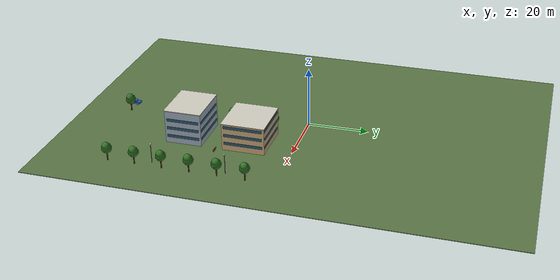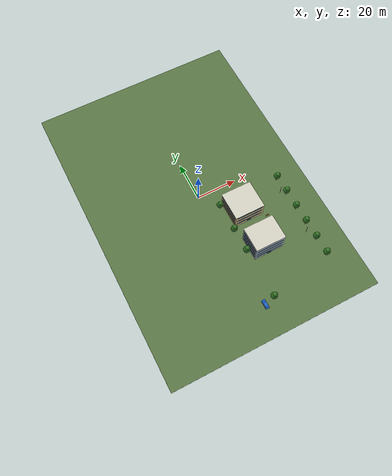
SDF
<sdf version="1.8">
 <world name="ute_city_v1">
  <model name="ground">
   <static>true</static>
   <link name="link">
    <visual name="ground">
     <pose>0 0 -0.1 0 0 0</pose>
     <geometry><box><size>106 154 0.2</size></box></geometry>
     <material>
      <ambient>0.35 0.46 0.27 1</ambient>
      <diffuse>0.35 0.46 0.27 1</diffuse>
      <specular>0.05 0.05 0.05 1</specular>
     </material>
    </visual>
    <collision name="ground_collision">
     <pose>0 0 -0.1 0 0 0</pose>
     <geometry><box><size>106 154 0.2</size></box></geometry>
    </collision>
   </link>
  </model>
  <model name="library">
   <static>true</static>
   <pose>16 -15 0 0 0 0</pose>
   <link name="link">
    <visual name="block">
     <pose>0 0 4.5 0 0 0</pose>
     <geometry><box><size>15 14 9</size></box></geometry>
     <material>
      <ambient>0.73 0.62 0.45 1</ambient>
      <diffuse>0.73 0.62 0.45 1</diffuse>
      <specular>0.05 0.05 0.05 1</specular>
     </material>
    </visual>
    <collision name="block_collision">
     <pose>0 0 4.5 0 0 0</pose>
     <geometry><box><size>15 14 9</size></box></geometry>
    </collision>
    <visual name="roof">
     <pose>0 0 9.12 0 0 0</pose>
     <geometry><box><size>15.3 14.3 0.24</size></box></geometry>
     <material>
      <ambient>0.83 0.82 0.76 1</ambient>
      <diffuse>0.83 0.82 0.76 1</diffuse>
      <specular>0.05 0.05 0.05 1</specular>
     </material>
    </visual>
    <collision name="roof_collision">
     <pose>0 0 9.12 0 0 0</pose>
     <geometry><box><size>15.3 14.3 0.24</size></box></geometry>
    </collision>
    <visual name="windows_y_1_-1">
     <pose>0 -7.018 2.4 0 0 0</pose>
     <geometry><box><size>13.7 0.03 1</size></box></geometry>
     <material>
      <ambient>0.16 0.30 0.36 1</ambient>
      <diffuse>0.16 0.30 0.36 1</diffuse>
      <specular>0.05 0.05 0.05 1</specular>
     </material>
    </visual>
    <visual name="windows_x_1_-1">
     <pose>-7.518 0 2.4 0 0 0</pose>
     <geometry><box><size>0.03 12.7 1</size></box></geometry>
     <material>
      <ambient>0.16 0.30 0.36 1</ambient>
      <diffuse>0.16 0.30 0.36 1</diffuse>
      <specular>0.05 0.05 0.05 1</specular>
     </material>
    </visual>
    <visual name="windows_y_1_1">
     <pose>0 7.018 2.4 0 0 0</pose>
     <geometry><box><size>13.7 0.03 1</size></box></geometry>
     <material>
      <ambient>0.16 0.30 0.36 1</ambient>
      <diffuse>0.16 0.30 0.36 1</diffuse>
      <specular>0.05 0.05 0.05 1</specular>
     </material>
    </visual>
    <visual name="windows_x_1_1">
     <pose>7.518 0 2.4 0 0 0</pose>
     <geometry><box><size>0.03 12.7 1</size></box></geometry>
     <material>
      <ambient>0.16 0.30 0.36 1</ambient>
      <diffuse>0.16 0.30 0.36 1</diffuse>
      <specular>0.05 0.05 0.05 1</specular>
     </material>
    </visual>
    <visual name="windows_y_2_-1">
     <pose>0 -7.018 5.2 0 0 0</pose>
     <geometry><box><size>13.7 0.03 1</size></box></geometry>
     <material>
      <ambient>0.16 0.30 0.36 1</ambient>
      <diffuse>0.16 0.30 0.36 1</diffuse>
      <specular>0.05 0.05 0.05 1</specular>
     </material>
    </visual>
    <visual name="windows_x_2_-1">
     <pose>-7.518 0 5.2 0 0 0</pose>
     <geometry><box><size>0.03 12.7 1</size></box></geometry>
     <material>
      <ambient>0.16 0.30 0.36 1</ambient>
      <diffuse>0.16 0.30 0.36 1</diffuse>
      <specular>0.05 0.05 0.05 1</specular>
     </material>
    </visual>
    <visual name="windows_y_2_1">
     <pose>0 7.018 5.2 0 0 0</pose>
     <geometry><box><size>13.7 0.03 1</size></box></geometry>
     <material>
      <ambient>0.16 0.30 0.36 1</ambient>
      <diffuse>0.16 0.30 0.36 1</diffuse>
      <specular>0.05 0.05 0.05 1</specular>
     </material>
    </visual>
    <visual name="windows_x_2_1">
     <pose>7.518 0 5.2 0 0 0</pose>
     <geometry><box><size>0.03 12.7 1</size></box></geometry>
     <material>
      <ambient>0.16 0.30 0.36 1</ambient>
      <diffuse>0.16 0.30 0.36 1</diffuse>
      <specular>0.05 0.05 0.05 1</specular>
     </material>
    </visual>
    <visual name="windows_y_3_-1">
     <pose>0 -7.018 8 0 0 0</pose>
     <geometry><box><size>13.7 0.03 1</size></box></geometry>
     <material>
      <ambient>0.16 0.30 0.36 1</ambient>
      <diffuse>0.16 0.30 0.36 1</diffuse>
      <specular>0.05 0.05 0.05 1</specular>
     </material>
    </visual>
    <visual name="windows_x_3_-1">
     <pose>-7.518 0 8 0 0 0</pose>
     <geometry><box><size>0.03 12.7 1</size></box></geometry>
     <material>
      <ambient>0.16 0.30 0.36 1</ambient>
      <diffuse>0.16 0.30 0.36 1</diffuse>
      <specular>0.05 0.05 0.05 1</specular>
     </material>
    </visual>
    <visual name="windows_y_3_1">
     <pose>0 7.018 8 0 0 0</pose>
     <geometry><box><size>13.7 0.03 1</size></box></geometry>
     <material>
      <ambient>0.16 0.30 0.36 1</ambient>
      <diffuse>0.16 0.30 0.36 1</diffuse>
      <specular>0.05 0.05 0.05 1</specular>
     </material>
    </visual>
    <visual name="windows_x_3_1">
     <pose>7.518 0 8 0 0 0</pose>
     <geometry><box><size>0.03 12.7 1</size></box></geometry>
     <material>
      <ambient>0.16 0.30 0.36 1</ambient>
      <diffuse>0.16 0.30 0.36 1</diffuse>
      <specular>0.05 0.05 0.05 1</specular>
     </material>
    </visual>
    <visual name="entry">
     <pose>0 -7.018 1.3 0 0 0</pose>
     <geometry><box><size>2.1 0.04 2.6</size></box></geometry>
     <material>
      <ambient>0.12 0.22 0.24 1</ambient>
      <diffuse>0.12 0.22 0.24 1</diffuse>
      <specular>0.05 0.05 0.05 1</specular>
     </material>
    </visual>
   </link>
  </model>
  <model name="technology">
   <static>true</static>
   <pose>16 -35 0 0 0 0</pose>
   <link name="link">
    <visual name="block">
     <pose>0 0 5.5 0 0 0</pose>
     <geometry><box><size>15 12 11</size></box></geometry>
     <material>
      <ambient>0.58 0.63 0.69 1</ambient>
      <diffuse>0.58 0.63 0.69 1</diffuse>
      <specular>0.05 0.05 0.05 1</specular>
     </material>
    </visual>
    <collision name="block_collision">
     <pose>0 0 5.5 0 0 0</pose>
     <geometry><box><size>15 12 11</size></box></geometry>
    </collision>
    <visual name="roof">
     <pose>0 0 11.12 0 0 0</pose>
     <geometry><box><size>15.3 12.3 0.24</size></box></geometry>
     <material>
      <ambient>0.83 0.82 0.76 1</ambient>
      <diffuse>0.83 0.82 0.76 1</diffuse>
      <specular>0.05 0.05 0.05 1</specular>
     </material>
    </visual>
    <collision name="roof_collision">
     <pose>0 0 11.12 0 0 0</pose>
     <geometry><box><size>15.3 12.3 0.24</size></box></geometry>
    </collision>
    <visual name="windows_y_1_-1">
     <pose>0 -6.018 2.4 0 0 0</pose>
     <geometry><box><size>13.7 0.03 1</size></box></geometry>
     <material>
      <ambient>0.16 0.30 0.36 1</ambient>
      <diffuse>0.16 0.30 0.36 1</diffuse>
      <specular>0.05 0.05 0.05 1</specular>
     </material>
    </visual>
    <visual name="windows_x_1_-1">
     <pose>-7.518 0 2.4 0 0 0</pose>
     <geometry><box><size>0.03 10.7 1</size></box></geometry>
     <material>
      <ambient>0.16 0.30 0.36 1</ambient>
      <diffuse>0.16 0.30 0.36 1</diffuse>
      <specular>0.05 0.05 0.05 1</specular>
     </material>
    </visual>
    <visual name="windows_y_1_1">
     <pose>0 6.018 2.4 0 0 0</pose>
     <geometry><box><size>13.7 0.03 1</size></box></geometry>
     <material>
      <ambient>0.16 0.30 0.36 1</ambient>
      <diffuse>0.16 0.30 0.36 1</diffuse>
      <specular>0.05 0.05 0.05 1</specular>
     </material>
    </visual>
    <visual name="windows_x_1_1">
     <pose>7.518 0 2.4 0 0 0</pose>
     <geometry><box><size>0.03 10.7 1</size></box></geometry>
     <material>
      <ambient>0.16 0.30 0.36 1</ambient>
      <diffuse>0.16 0.30 0.36 1</diffuse>
      <specular>0.05 0.05 0.05 1</specular>
     </material>
    </visual>
    <visual name="windows_y_2_-1">
     <pose>0 -6.018 5.2 0 0 0</pose>
     <geometry><box><size>13.7 0.03 1</size></box></geometry>
     <material>
      <ambient>0.16 0.30 0.36 1</ambient>
      <diffuse>0.16 0.30 0.36 1</diffuse>
      <specular>0.05 0.05 0.05 1</specular>
     </material>
    </visual>
    <visual name="windows_x_2_-1">
     <pose>-7.518 0 5.2 0 0 0</pose>
     <geometry><box><size>0.03 10.7 1</size></box></geometry>
     <material>
      <ambient>0.16 0.30 0.36 1</ambient>
      <diffuse>0.16 0.30 0.36 1</diffuse>
      <specular>0.05 0.05 0.05 1</specular>
     </material>
    </visual>
    <visual name="windows_y_2_1">
     <pose>0 6.018 5.2 0 0 0</pose>
     <geometry><box><size>13.7 0.03 1</size></box></geometry>
     <material>
      <ambient>0.16 0.30 0.36 1</ambient>
      <diffuse>0.16 0.30 0.36 1</diffuse>
      <specular>0.05 0.05 0.05 1</specular>
     </material>
    </visual>
    <visual name="windows_x_2_1">
     <pose>7.518 0 5.2 0 0 0</pose>
     <geometry><box><size>0.03 10.7 1</size></box></geometry>
     <material>
      <ambient>0.16 0.30 0.36 1</ambient>
      <diffuse>0.16 0.30 0.36 1</diffuse>
      <specular>0.05 0.05 0.05 1</specular>
     </material>
    </visual>
    <visual name="windows_y_3_-1">
     <pose>0 -6.018 8 0 0 0</pose>
     <geometry><box><size>13.7 0.03 1</size></box></geometry>
     <material>
      <ambient>0.16 0.30 0.36 1</ambient>
      <diffuse>0.16 0.30 0.36 1</diffuse>
      <specular>0.05 0.05 0.05 1</specular>
     </material>
    </visual>
    <visual name="windows_x_3_-1">
     <pose>-7.518 0 8 0 0 0</pose>
     <geometry><box><size>0.03 10.7 1</size></box></geometry>
     <material>
      <ambient>0.16 0.30 0.36 1</ambient>
      <diffuse>0.16 0.30 0.36 1</diffuse>
      <specular>0.05 0.05 0.05 1</specular>
     </material>
    </visual>
    <visual name="windows_y_3_1">
     <pose>0 6.018 8 0 0 0</pose>
     <geometry><box><size>13.7 0.03 1</size></box></geometry>
     <material>
      <ambient>0.16 0.30 0.36 1</ambient>
      <diffuse>0.16 0.30 0.36 1</diffuse>
      <specular>0.05 0.05 0.05 1</specular>
     </material>
    </visual>
    <visual name="windows_x_3_1">
     <pose>7.518 0 8 0 0 0</pose>
     <geometry><box><size>0.03 10.7 1</size></box></geometry>
     <material>
      <ambient>0.16 0.30 0.36 1</ambient>
      <diffuse>0.16 0.30 0.36 1</diffuse>
      <specular>0.05 0.05 0.05 1</specular>
     </material>
    </visual>
    <visual name="entry">
     <pose>0 -6.018 1.3 0 0 0</pose>
     <geometry><box><size>2.1 0.04 2.6</size></box></geometry>
     <material>
      <ambient>0.12 0.22 0.24 1</ambient>
      <diffuse>0.12 0.22 0.24 1</diffuse>
      <specular>0.05 0.05 0.05 1</specular>
     </material>
    </visual>
   </link>
  </model>
  <model name="tree_013">
   <static>true</static>
   <pose>39 -54 0 0 0 0</pose>
   <link name="link">
    <visual name="trunk">
     <pose>0 0 1.6 0 0 0</pose>
     <geometry><cylinder><radius>0.2</radius><length>3.2</length></cylinder></geometry>
     <material>
      <ambient>0.30 0.19 0.10 1</ambient>
      <diffuse>0.30 0.19 0.10 1</diffuse>
      <specular>0.05 0.05 0.05 1</specular>
     </material>
    </visual>
    <collision name="trunk_collision">
     <pose>0 0 1.6 0 0 0</pose>
     <geometry><cylinder><radius>0.2</radius><length>3.2</length></cylinder></geometry>
    </collision>
    <visual name="canopy">
     <pose>0 0 4.2 0 0 0</pose>
     <geometry><sphere><radius>1.65</radius></sphere></geometry>
     <material>
      <ambient>0.15 0.39 0.12 1</ambient>
      <diffuse>0.15 0.39 0.12 1</diffuse>
      <specular>0.05 0.05 0.05 1</specular>
     </material>
    </visual>
    <visual name="crown">
     <pose>0.4 0 5.2 0 0 0</pose>
     <geometry><sphere><radius>1.2</radius></sphere></geometry>
     <material>
      <ambient>0.21 0.46 0.15 1</ambient>
      <diffuse>0.21 0.46 0.15 1</diffuse>
      <specular>0.05 0.05 0.05 1</specular>
     </material>
    </visual>
   </link>
  </model>
  <model name="tree_014">
   <static>true</static>
   <pose>39 -45 0 0 0 0</pose>
   <link name="link">
    <visual name="trunk">
     <pose>0 0 1.6 0 0 0</pose>
     <geometry><cylinder><radius>0.2</radius><length>3.2</length></cylinder></geometry>
     <material>
      <ambient>0.30 0.19 0.10 1</ambient>
      <diffuse>0.30 0.19 0.10 1</diffuse>
      <specular>0.05 0.05 0.05 1</specular>
     </material>
    </visual>
    <collision name="trunk_collision">
     <pose>0 0 1.6 0 0 0</pose>
     <geometry><cylinder><radius>0.2</radius><length>3.2</length></cylinder></geometry>
    </collision>
    <visual name="canopy">
     <pose>0 0 4.2 0 0 0</pose>
     <geometry><sphere><radius>1.65</radius></sphere></geometry>
     <material>
      <ambient>0.15 0.39 0.12 1</ambient>
      <diffuse>0.15 0.39 0.12 1</diffuse>
      <specular>0.05 0.05 0.05 1</specular>
     </material>
    </visual>
    <visual name="crown">
     <pose>0.4 0 5.2 0 0 0</pose>
     <geometry><sphere><radius>1.2</radius></sphere></geometry>
     <material>
      <ambient>0.21 0.46 0.15 1</ambient>
      <diffuse>0.21 0.46 0.15 1</diffuse>
      <specular>0.05 0.05 0.05 1</specular>
     </material>
    </visual>
   </link>
  </model>
  <model name="tree_015">
   <static>true</static>
   <pose>39 -36 0 0 0 0</pose>
   <link name="link">
    <visual name="trunk">
     <pose>0 0 1.6 0 0 0</pose>
     <geometry><cylinder><radius>0.2</radius><length>3.2</length></cylinder></geometry>
     <material>
      <ambient>0.30 0.19 0.10 1</ambient>
      <diffuse>0.30 0.19 0.10 1</diffuse>
      <specular>0.05 0.05 0.05 1</specular>
     </material>
    </visual>
    <collision name="trunk_collision">
     <pose>0 0 1.6 0 0 0</pose>
     <geometry><cylinder><radius>0.2</radius><length>3.2</length></cylinder></geometry>
    </collision>
    <visual name="canopy">
     <pose>0 0 4.2 0 0 0</pose>
     <geometry><sphere><radius>1.65</radius></sphere></geometry>
     <material>
      <ambient>0.15 0.39 0.12 1</ambient>
      <diffuse>0.15 0.39 0.12 1</diffuse>
      <specular>0.05 0.05 0.05 1</specular>
     </material>
    </visual>
    <visual name="crown">
     <pose>0.4 0 5.2 0 0 0</pose>
     <geometry><sphere><radius>1.2</radius></sphere></geometry>
     <material>
      <ambient>0.21 0.46 0.15 1</ambient>
      <diffuse>0.21 0.46 0.15 1</diffuse>
      <specular>0.05 0.05 0.05 1</specular>
     </material>
    </visual>
   </link>
  </model>
  <model name="tree_016">
   <static>true</static>
   <pose>39 -27 0 0 0 0</pose>
   <link name="link">
    <visual name="trunk">
     <pose>0 0 1.6 0 0 0</pose>
     <geometry><cylinder><radius>0.2</radius><length>3.2</length></cylinder></geometry>
     <material>
      <ambient>0.30 0.19 0.10 1</ambient>
      <diffuse>0.30 0.19 0.10 1</diffuse>
      <specular>0.05 0.05 0.05 1</specular>
     </material>
    </visual>
    <collision name="trunk_collision">
     <pose>0 0 1.6 0 0 0</pose>
     <geometry><cylinder><radius>0.2</radius><length>3.2</length></cylinder></geometry>
    </collision>
    <visual name="canopy">
     <pose>0 0 4.2 0 0 0</pose>
     <geometry><sphere><radius>1.65</radius></sphere></geometry>
     <material>
      <ambient>0.15 0.39 0.12 1</ambient>
      <diffuse>0.15 0.39 0.12 1</diffuse>
      <specular>0.05 0.05 0.05 1</specular>
     </material>
    </visual>
    <visual name="crown">
     <pose>0.4 0 5.2 0 0 0</pose>
     <geometry><sphere><radius>1.2</radius></sphere></geometry>
     <material>
      <ambient>0.21 0.46 0.15 1</ambient>
      <diffuse>0.21 0.46 0.15 1</diffuse>
      <specular>0.05 0.05 0.05 1</specular>
     </material>
    </visual>
   </link>
  </model>
  <model name="tree_017">
   <static>true</static>
   <pose>39 -18 0 0 0 0</pose>
   <link name="link">
    <visual name="trunk">
     <pose>0 0 1.6 0 0 0</pose>
     <geometry><cylinder><radius>0.2</radius><length>3.2</length></cylinder></geometry>
     <material>
      <ambient>0.30 0.19 0.10 1</ambient>
      <diffuse>0.30 0.19 0.10 1</diffuse>
      <specular>0.05 0.05 0.05 1</specular>
     </material>
    </visual>
    <collision name="trunk_collision">
     <pose>0 0 1.6 0 0 0</pose>
     <geometry><cylinder><radius>0.2</radius><length>3.2</length></cylinder></geometry>
    </collision>
    <visual name="canopy">
     <pose>0 0 4.2 0 0 0</pose>
     <geometry><sphere><radius>1.65</radius></sphere></geometry>
     <material>
      <ambient>0.15 0.39 0.12 1</ambient>
      <diffuse>0.15 0.39 0.12 1</diffuse>
      <specular>0.05 0.05 0.05 1</specular>
     </material>
    </visual>
    <visual name="crown">
     <pose>0.4 0 5.2 0 0 0</pose>
     <geometry><sphere><radius>1.2</radius></sphere></geometry>
     <material>
      <ambient>0.21 0.46 0.15 1</ambient>
      <diffuse>0.21 0.46 0.15 1</diffuse>
      <specular>0.05 0.05 0.05 1</specular>
     </material>
    </visual>
   </link>
  </model>
  <model name="tree_018">
   <static>true</static>
   <pose>39 -9 0 0 0 0</pose>
   <link name="link">
    <visual name="trunk">
     <pose>0 0 1.6 0 0 0</pose>
     <geometry><cylinder><radius>0.2</radius><length>3.2</length></cylinder></geometry>
     <material>
      <ambient>0.30 0.19 0.10 1</ambient>
      <diffuse>0.30 0.19 0.10 1</diffuse>
      <specular>0.05 0.05 0.05 1</specular>
     </material>
    </visual>
    <collision name="trunk_collision">
     <pose>0 0 1.6 0 0 0</pose>
     <geometry><cylinder><radius>0.2</radius><length>3.2</length></cylinder></geometry>
    </collision>
    <visual name="canopy">
     <pose>0 0 4.2 0 0 0</pose>
     <geometry><sphere><radius>1.65</radius></sphere></geometry>
     <material>
      <ambient>0.15 0.39 0.12 1</ambient>
      <diffuse>0.15 0.39 0.12 1</diffuse>
      <specular>0.05 0.05 0.05 1</specular>
     </material>
    </visual>
    <visual name="crown">
     <pose>0.4 0 5.2 0 0 0</pose>
     <geometry><sphere><radius>1.2</radius></sphere></geometry>
     <material>
      <ambient>0.21 0.46 0.15 1</ambient>
      <diffuse>0.21 0.46 0.15 1</diffuse>
      <specular>0.05 0.05 0.05 1</specular>
     </material>
    </visual>
   </link>
  </model>
  <model name="tree_040">
   <static>true</static>
   <pose>6.5 -61 0 0 0 0</pose>
   <link name="link">
    <visual name="trunk">
     <pose>0 0 1.6 0 0 0</pose>
     <geometry><cylinder><radius>0.2</radius><length>3.2</length></cylinder></geometry>
     <material>
      <ambient>0.30 0.19 0.10 1</ambient>
      <diffuse>0.30 0.19 0.10 1</diffuse>
      <specular>0.05 0.05 0.05 1</specular>
     </material>
    </visual>
    <collision name="trunk_collision">
     <pose>0 0 1.6 0 0 0</pose>
     <geometry><cylinder><radius>0.2</radius><length>3.2</length></cylinder></geometry>
    </collision>
    <visual name="canopy">
     <pose>0 0 4.2 0 0 0</pose>
     <geometry><sphere><radius>1.65</radius></sphere></geometry>
     <material>
      <ambient>0.15 0.39 0.12 1</ambient>
      <diffuse>0.15 0.39 0.12 1</diffuse>
      <specular>0.05 0.05 0.05 1</specular>
     </material>
    </visual>
    <visual name="crown">
     <pose>0.4 0 5.2 0 0 0</pose>
     <geometry><sphere><radius>1.2</radius></sphere></geometry>
     <material>
      <ambient>0.21 0.46 0.15 1</ambient>
      <diffuse>0.21 0.46 0.15 1</diffuse>
      <specular>0.05 0.05 0.05 1</specular>
     </material>
    </visual>
   </link>
  </model>
  <model name="tree_041">
   <static>true</static>
   <pose>6.5 -36 0 0 0 0</pose>
   <link name="link">
    <visual name="trunk">
     <pose>0 0 1.6 0 0 0</pose>
     <geometry><cylinder><radius>0.2</radius><length>3.2</length></cylinder></geometry>
     <material>
      <ambient>0.30 0.19 0.10 1</ambient>
      <diffuse>0.30 0.19 0.10 1</diffuse>
      <specular>0.05 0.05 0.05 1</specular>
     </material>
    </visual>
    <collision name="trunk_collision">
     <pose>0 0 1.6 0 0 0</pose>
     <geometry><cylinder><radius>0.2</radius><length>3.2</length></cylinder></geometry>
    </collision>
    <visual name="canopy">
     <pose>0 0 4.2 0 0 0</pose>
     <geometry><sphere><radius>1.65</radius></sphere></geometry>
     <material>
      <ambient>0.15 0.39 0.12 1</ambient>
      <diffuse>0.15 0.39 0.12 1</diffuse>
      <specular>0.05 0.05 0.05 1</specular>
     </material>
    </visual>
    <visual name="crown">
     <pose>0.4 0 5.2 0 0 0</pose>
     <geometry><sphere><radius>1.2</radius></sphere></geometry>
     <material>
      <ambient>0.21 0.46 0.15 1</ambient>
      <diffuse>0.21 0.46 0.15 1</diffuse>
      <specular>0.05 0.05 0.05 1</specular>
     </material>
    </visual>
   </link>
  </model>
  <model name="tree_042">
   <static>true</static>
   <pose>6.5 -24 0 0 0 0</pose>
   <link name="link">
    <visual name="trunk">
     <pose>0 0 1.6 0 0 0</pose>
     <geometry><cylinder><radius>0.2</radius><length>3.2</length></cylinder></geometry>
     <material>
      <ambient>0.30 0.19 0.10 1</ambient>
      <diffuse>0.30 0.19 0.10 1</diffuse>
      <specular>0.05 0.05 0.05 1</specular>
     </material>
    </visual>
    <collision name="trunk_collision">
     <pose>0 0 1.6 0 0 0</pose>
     <geometry><cylinder><radius>0.2</radius><length>3.2</length></cylinder></geometry>
    </collision>
    <visual name="canopy">
     <pose>0 0 4.2 0 0 0</pose>
     <geometry><sphere><radius>1.65</radius></sphere></geometry>
     <material>
      <ambient>0.15 0.39 0.12 1</ambient>
      <diffuse>0.15 0.39 0.12 1</diffuse>
      <specular>0.05 0.05 0.05 1</specular>
     </material>
    </visual>
    <visual name="crown">
     <pose>0.4 0 5.2 0 0 0</pose>
     <geometry><sphere><radius>1.2</radius></sphere></geometry>
     <material>
      <ambient>0.21 0.46 0.15 1</ambient>
      <diffuse>0.21 0.46 0.15 1</diffuse>
      <specular>0.05 0.05 0.05 1</specular>
     </material>
    </visual>
   </link>
  </model>
  <model name="tree_043">
   <static>true</static>
   <pose>6.5 -10 0 0 0 0</pose>
   <link name="link">
    <visual name="trunk">
     <pose>0 0 1.6 0 0 0</pose>
     <geometry><cylinder><radius>0.2</radius><length>3.2</length></cylinder></geometry>
     <material>
      <ambient>0.30 0.19 0.10 1</ambient>
      <diffuse>0.30 0.19 0.10 1</diffuse>
      <specular>0.05 0.05 0.05 1</specular>
     </material>
    </visual>
    <collision name="trunk_collision">
     <pose>0 0 1.6 0 0 0</pose>
     <geometry><cylinder><radius>0.2</radius><length>3.2</length></cylinder></geometry>
    </collision>
    <visual name="canopy">
     <pose>0 0 4.2 0 0 0</pose>
     <geometry><sphere><radius>1.65</radius></sphere></geometry>
     <material>
      <ambient>0.15 0.39 0.12 1</ambient>
      <diffuse>0.15 0.39 0.12 1</diffuse>
      <specular>0.05 0.05 0.05 1</specular>
     </material>
    </visual>
    <visual name="crown">
     <pose>0.4 0 5.2 0 0 0</pose>
     <geometry><sphere><radius>1.2</radius></sphere></geometry>
     <material>
      <ambient>0.21 0.46 0.15 1</ambient>
      <diffuse>0.21 0.46 0.15 1</diffuse>
      <specular>0.05 0.05 0.05 1</specular>
     </material>
    </visual>
   </link>
  </model>
  <model name="lamp_4">
   <static>true</static>
   <pose>37 -40 0 0 0 0</pose>
   <link name="link">
    <visual name="pole">
     <pose>0 0 3.3 0 0 0</pose>
     <geometry><cylinder><radius>0.08</radius><length>6.6</length></cylinder></geometry>
     <material>
      <ambient>0.25 0.27 0.29 1</ambient>
      <diffuse>0.25 0.27 0.29 1</diffuse>
      <specular>0.05 0.05 0.05 1</specular>
     </material>
    </visual>
    <collision name="pole_collision">
     <pose>0 0 3.3 0 0 0</pose>
     <geometry><cylinder><radius>0.08</radius><length>6.6</length></cylinder></geometry>
    </collision>
    <visual name="fixture">
     <pose>0 0 6.6 0 0 0</pose>
     <geometry><box><size>0.7 0.4 0.15</size></box></geometry>
     <material>
      <ambient>0.8 0.8 0.7 1</ambient>
      <diffuse>0.8 0.8 0.7 1</diffuse>
      <specular>0.05 0.05 0.05 1</specular>
     </material>
    </visual>
    <collision name="fixture_collision">
     <pose>0 0 6.6 0 0 0</pose>
     <geometry><box><size>0.7 0.4 0.15</size></box></geometry>
    </collision>
   </link>
  </model>
  <model name="lamp_5">
   <static>true</static>
   <pose>37 -16 0 0 0 0</pose>
   <link name="link">
    <visual name="pole">
     <pose>0 0 3.3 0 0 0</pose>
     <geometry><cylinder><radius>0.08</radius><length>6.6</length></cylinder></geometry>
     <material>
      <ambient>0.25 0.27 0.29 1</ambient>
      <diffuse>0.25 0.27 0.29 1</diffuse>
      <specular>0.05 0.05 0.05 1</specular>
     </material>
    </visual>
    <collision name="pole_collision">
     <pose>0 0 3.3 0 0 0</pose>
     <geometry><cylinder><radius>0.08</radius><length>6.6</length></cylinder></geometry>
    </collision>
    <visual name="fixture">
     <pose>0 0 6.6 0 0 0</pose>
     <geometry><box><size>0.7 0.4 0.15</size></box></geometry>
     <material>
      <ambient>0.8 0.8 0.7 1</ambient>
      <diffuse>0.8 0.8 0.7 1</diffuse>
      <specular>0.05 0.05 0.05 1</specular>
     </material>
    </visual>
    <collision name="fixture_collision">
     <pose>0 0 6.6 0 0 0</pose>
     <geometry><box><size>0.7 0.4 0.15</size></box></geometry>
    </collision>
   </link>
  </model>
  <model name="bench_1">
   <static>true</static>
   <pose>25 -24 0 0 0 0</pose>
   <link name="link">
    <visual name="seat">
     <pose>0 0 0.5 0 0 0</pose>
     <geometry><box><size>1.8 0.5 0.13</size></box></geometry>
     <material>
      <ambient>0.48 0.29 0.12 1</ambient>
      <diffuse>0.48 0.29 0.12 1</diffuse>
      <specular>0.05 0.05 0.05 1</specular>
     </material>
    </visual>
    <collision name="seat_collision">
     <pose>0 0 0.5 0 0 0</pose>
     <geometry><box><size>1.8 0.5 0.13</size></box></geometry>
    </collision>
    <visual name="back">
     <pose>0 0.22 0.85 0 0 0</pose>
     <geometry><box><size>1.8 0.12 0.6</size></box></geometry>
     <material>
      <ambient>0.48 0.29 0.12 1</ambient>
      <diffuse>0.48 0.29 0.12 1</diffuse>
      <specular>0.05 0.05 0.05 1</specular>
     </material>
    </visual>
    <collision name="back_collision">
     <pose>0 0.22 0.85 0 0 0</pose>
     <geometry><box><size>1.8 0.12 0.6</size></box></geometry>
    </collision>
    <visual name="leg_-1">
     <pose>-0.65 0 0.25 0 0 0</pose>
     <geometry><box><size>0.1 0.4 0.5</size></box></geometry>
     <material>
      <ambient>0.2 0.2 0.2 1</ambient>
      <diffuse>0.2 0.2 0.2 1</diffuse>
      <specular>0.05 0.05 0.05 1</specular>
     </material>
    </visual>
    <collision name="leg_-1_collision">
     <pose>-0.65 0 0.25 0 0 0</pose>
     <geometry><box><size>0.1 0.4 0.5</size></box></geometry>
    </collision>
    <visual name="leg_1">
     <pose>0.65 0 0.25 0 0 0</pose>
     <geometry><box><size>0.1 0.4 0.5</size></box></geometry>
     <material>
      <ambient>0.2 0.2 0.2 1</ambient>
      <diffuse>0.2 0.2 0.2 1</diffuse>
      <specular>0.05 0.05 0.05 1</specular>
     </material>
    </visual>
    <collision name="leg_1_collision">
     <pose>0.65 0 0.25 0 0 0</pose>
     <geometry><box><size>0.1 0.4 0.5</size></box></geometry>
    </collision>
   </link>
  </model>
  <model name="ute_car">
   <pose>1.75 -62 0.04 0 0 1.5707963</pose>
   <link name="chassis">
    <pose>0 0 0.72 0 0 0</pose>
    <inertial>
     <mass>1100</mass>
     <inertia><ixx>390</ixx><iyy>1850</iyy><izz>2000</izz><ixy>0</ixy><ixz>0</ixz><iyz>0</iyz></inertia>
    </inertial>
    <visual name="body">
     <geometry><box><size>4.4 1.8 0.6</size></box></geometry>
     <material>
      <ambient>0.08 0.32 0.70 1</ambient>
      <diffuse>0.08 0.32 0.70 1</diffuse>
      <specular>0.05 0.05 0.05 1</specular>
     </material>
    </visual>
    <collision name="body_collision"><geometry><box><size>4.4 1.8 0.6</size></box></geometry></collision>
    <visual name="cabin">
     <pose>-0.25 0 0.55 0 0 0</pose>
     <geometry><box><size>2.25 1.58 0.6</size></box></geometry>
     <material>
      <ambient>0.12 0.38 0.75 1</ambient>
      <diffuse>0.12 0.38 0.75 1</diffuse>
      <specular>0.05 0.05 0.05 1</specular>
     </material>
    </visual>
    <collision name="cabin_collision">
     <pose>-0.25 0 0.55 0 0 0</pose>
     <geometry><box><size>2.25 1.58 0.6</size></box></geometry>
    </collision>
    <visual name="windshield">
     <pose>0.885 0 0.55 0 0 0</pose>
     <geometry><box><size>0.025 1.42 0.45</size></box></geometry>
     <material>
      <ambient>0.09 0.18 0.23 1</ambient>
      <diffuse>0.09 0.18 0.23 1</diffuse>
      <specular>0.05 0.05 0.05 1</specular>
     </material>
    </visual>
    <visual name="window_-1">
     <pose>-0.25 -0.8 0.55 0 0 0</pose>
     <geometry><box><size>1.95 0.025 0.43</size></box></geometry>
     <material>
      <ambient>0.09 0.18 0.23 1</ambient>
      <diffuse>0.09 0.18 0.23 1</diffuse>
      <specular>0.05 0.05 0.05 1</specular>
     </material>
    </visual>
    <visual name="headlamp_-1">
     <pose>2.205 -0.58 0.08 0 0 0</pose>
     <geometry><box><size>0.025 0.36 0.16</size></box></geometry>
     <material>
      <ambient>0.95 0.95 0.92 1</ambient>
      <diffuse>0.95 0.95 0.92 1</diffuse>
      <specular>0.05 0.05 0.05 1</specular>
     </material>
    </visual>
    <visual name="taillamp_-1">
     <pose>-2.205 -0.58 0.08 0 0 0</pose>
     <geometry><box><size>0.025 0.36 0.16</size></box></geometry>
     <material>
      <ambient>0.85 0.035 0.025 1</ambient>
      <diffuse>0.85 0.035 0.025 1</diffuse>
      <specular>0.05 0.05 0.05 1</specular>
     </material>
    </visual>
    <visual name="window_1">
     <pose>-0.25 0.8 0.55 0 0 0</pose>
     <geometry><box><size>1.95 0.025 0.43</size></box></geometry>
     <material>
      <ambient>0.09 0.18 0.23 1</ambient>
      <diffuse>0.09 0.18 0.23 1</diffuse>
      <specular>0.05 0.05 0.05 1</specular>
     </material>
    </visual>
    <visual name="headlamp_1">
     <pose>2.205 0.58 0.08 0 0 0</pose>
     <geometry><box><size>0.025 0.36 0.16</size></box></geometry>
     <material>
      <ambient>0.95 0.95 0.92 1</ambient>
      <diffuse>0.95 0.95 0.92 1</diffuse>
      <specular>0.05 0.05 0.05 1</specular>
     </material>
    </visual>
    <visual name="taillamp_1">
     <pose>-2.205 0.58 0.08 0 0 0</pose>
     <geometry><box><size>0.025 0.36 0.16</size></box></geometry>
     <material>
      <ambient>0.85 0.035 0.025 1</ambient>
      <diffuse>0.85 0.035 0.025 1</diffuse>
      <specular>0.05 0.05 0.05 1</specular>
     </material>
    </visual>
    <visual name="camera_housing">
     <pose>2.24 0 0.38 0 0 0</pose>
     <geometry><box><size>0.12 0.18 0.12</size></box></geometry>
     <material>
      <ambient>0.04 0.04 0.04 1</ambient>
      <diffuse>0.04 0.04 0.04 1</diffuse>
      <specular>0.05 0.05 0.05 1</specular>
     </material>
    </visual>
    <sensor name="front_camera" type="camera">
     <pose>2.31 0 0.38 0 0.08 0</pose>
     <always_on>true</always_on>
     <update_rate>20</update_rate>
     <topic>/ute_car/front_camera/image</topic>
     <camera>
      <horizontal_fov>1.3962634</horizontal_fov>
      <image><width>640</width><height>360</height><format>R8G8B8</format></image>
      <clip><near>0.05</near><far>180</far></clip>
      <camera_info_topic>/ute_car/front_camera/camera_info</camera_info_topic>
     </camera>
    </sensor>
   </link>
   <link name="front_left_knuckle">
    <pose>1.325 0.78 0.32 0 0 0</pose>
    <inertial>
     <mass>3</mass>
     <inertia><ixx>0.015</ixx><iyy>0.015</iyy><izz>0.015</izz><ixy>0</ixy><ixz>0</ixz><iyz>0</iyz></inertia>
    </inertial>
   </link>
   <joint name="front_left_steer" type="revolute">
    <parent>chassis</parent>
    <child>front_left_knuckle</child>
    <axis>
     <xyz>0 0 1</xyz>
     <limit><lower>-0.7</lower><upper>0.7</upper><effort>1500</effort><velocity>3</velocity></limit>
     <dynamics><damping>0.2</damping></dynamics>
    </axis>
   </joint>
   <link name="front_left_wheel">
    <pose>1.325 0.78 0.32 0 0 0</pose>
    <inertial>
     <mass>18</mass>
     <inertia><ixx>0.5472</ixx><iyy>0.9216</iyy><izz>0.5472</izz><ixy>0</ixy><ixz>0</ixz><iyz>0</iyz></inertia>
    </inertial>
    <visual name="tire">
     <pose>0 0 0 1.5707963 0 0</pose>
     <geometry><cylinder><radius>0.32</radius><length>0.24</length></cylinder></geometry>
     <material>
      <ambient>0.045 0.045 0.045 1</ambient>
      <diffuse>0.045 0.045 0.045 1</diffuse>
      <specular>0.05 0.05 0.05 1</specular>
     </material>
    </visual>
    <collision name="tire_collision">
     <pose>0 0 0 1.5707963 0 0</pose>
     <geometry><cylinder><radius>0.32</radius><length>0.24</length></cylinder></geometry>
     <surface><friction><ode><mu>1.0</mu><mu2>1.0</mu2></ode></friction></surface>
    </collision>
    <visual name="hub">
     <pose>0 0.125 0 1.5707963 0 0</pose>
     <geometry><cylinder><radius>0.18</radius><length>0.012</length></cylinder></geometry>
     <material>
      <ambient>0.65 0.68 0.72 1</ambient>
      <diffuse>0.65 0.68 0.72 1</diffuse>
      <specular>0.05 0.05 0.05 1</specular>
     </material>
    </visual>
   </link>
   <joint name="front_left_axle" type="revolute">
    <parent>front_left_knuckle</parent>
    <child>front_left_wheel</child>
    <axis>
     <xyz>0 1 0</xyz>
     <limit><lower>-1e+16</lower><upper>1e+16</upper><effort>1500</effort><velocity>100</velocity></limit>
     <dynamics><damping>0.02</damping></dynamics>
    </axis>
   </joint>
   <link name="front_right_knuckle">
    <pose>1.325 -0.78 0.32 0 0 0</pose>
    <inertial>
     <mass>3</mass>
     <inertia><ixx>0.015</ixx><iyy>0.015</iyy><izz>0.015</izz><ixy>0</ixy><ixz>0</ixz><iyz>0</iyz></inertia>
    </inertial>
   </link>
   <joint name="front_right_steer" type="revolute">
    <parent>chassis</parent>
    <child>front_right_knuckle</child>
    <axis>
     <xyz>0 0 1</xyz>
     <limit><lower>-0.7</lower><upper>0.7</upper><effort>1500</effort><velocity>3</velocity></limit>
     <dynamics><damping>0.2</damping></dynamics>
    </axis>
   </joint>
   <link name="front_right_wheel">
    <pose>1.325 -0.78 0.32 0 0 0</pose>
    <inertial>
     <mass>18</mass>
     <inertia><ixx>0.5472</ixx><iyy>0.9216</iyy><izz>0.5472</izz><ixy>0</ixy><ixz>0</ixz><iyz>0</iyz></inertia>
    </inertial>
    <visual name="tire">
     <pose>0 0 0 1.5707963 0 0</pose>
     <geometry><cylinder><radius>0.32</radius><length>0.24</length></cylinder></geometry>
     <material>
      <ambient>0.045 0.045 0.045 1</ambient>
      <diffuse>0.045 0.045 0.045 1</diffuse>
      <specular>0.05 0.05 0.05 1</specular>
     </material>
    </visual>
    <collision name="tire_collision">
     <pose>0 0 0 1.5707963 0 0</pose>
     <geometry><cylinder><radius>0.32</radius><length>0.24</length></cylinder></geometry>
     <surface><friction><ode><mu>1.0</mu><mu2>1.0</mu2></ode></friction></surface>
    </collision>
    <visual name="hub">
     <pose>0 -0.125 0 1.5707963 0 0</pose>
     <geometry><cylinder><radius>0.18</radius><length>0.012</length></cylinder></geometry>
     <material>
      <ambient>0.65 0.68 0.72 1</ambient>
      <diffuse>0.65 0.68 0.72 1</diffuse>
      <specular>0.05 0.05 0.05 1</specular>
     </material>
    </visual>
   </link>
   <joint name="front_right_axle" type="revolute">
    <parent>front_right_knuckle</parent>
    <child>front_right_wheel</child>
    <axis>
     <xyz>0 1 0</xyz>
     <limit><lower>-1e+16</lower><upper>1e+16</upper><effort>1500</effort><velocity>100</velocity></limit>
     <dynamics><damping>0.02</damping></dynamics>
    </axis>
   </joint>
   <link name="rear_left_wheel">
    <pose>-1.325 0.78 0.32 0 0 0</pose>
    <inertial>
     <mass>18</mass>
     <inertia><ixx>0.5472</ixx><iyy>0.9216</iyy><izz>0.5472</izz><ixy>0</ixy><ixz>0</ixz><iyz>0</iyz></inertia>
    </inertial>
    <visual name="tire">
     <pose>0 0 0 1.5707963 0 0</pose>
     <geometry><cylinder><radius>0.32</radius><length>0.24</length></cylinder></geometry>
     <material>
      <ambient>0.045 0.045 0.045 1</ambient>
      <diffuse>0.045 0.045 0.045 1</diffuse>
      <specular>0.05 0.05 0.05 1</specular>
     </material>
    </visual>
    <collision name="tire_collision">
     <pose>0 0 0 1.5707963 0 0</pose>
     <geometry><cylinder><radius>0.32</radius><length>0.24</length></cylinder></geometry>
     <surface><friction><ode><mu>1.0</mu><mu2>1.0</mu2></ode></friction></surface>
    </collision>
    <visual name="hub">
     <pose>0 0.125 0 1.5707963 0 0</pose>
     <geometry><cylinder><radius>0.18</radius><length>0.012</length></cylinder></geometry>
     <material>
      <ambient>0.65 0.68 0.72 1</ambient>
      <diffuse>0.65 0.68 0.72 1</diffuse>
      <specular>0.05 0.05 0.05 1</specular>
     </material>
    </visual>
   </link>
   <joint name="rear_left_axle" type="revolute">
    <parent>chassis</parent>
    <child>rear_left_wheel</child>
    <axis>
     <xyz>0 1 0</xyz>
     <limit><lower>-1e+16</lower><upper>1e+16</upper><effort>1500</effort><velocity>100</velocity></limit>
     <dynamics><damping>0.02</damping></dynamics>
    </axis>
   </joint>
   <link name="rear_right_wheel">
    <pose>-1.325 -0.78 0.32 0 0 0</pose>
    <inertial>
     <mass>18</mass>
     <inertia><ixx>0.5472</ixx><iyy>0.9216</iyy><izz>0.5472</izz><ixy>0</ixy><ixz>0</ixz><iyz>0</iyz></inertia>
    </inertial>
    <visual name="tire">
     <pose>0 0 0 1.5707963 0 0</pose>
     <geometry><cylinder><radius>0.32</radius><length>0.24</length></cylinder></geometry>
     <material>
      <ambient>0.045 0.045 0.045 1</ambient>
      <diffuse>0.045 0.045 0.045 1</diffuse>
      <specular>0.05 0.05 0.05 1</specular>
     </material>
    </visual>
    <collision name="tire_collision">
     <pose>0 0 0 1.5707963 0 0</pose>
     <geometry><cylinder><radius>0.32</radius><length>0.24</length></cylinder></geometry>
     <surface><friction><ode><mu>1.0</mu><mu2>1.0</mu2></ode></friction></surface>
    </collision>
    <visual name="hub">
     <pose>0 -0.125 0 1.5707963 0 0</pose>
     <geometry><cylinder><radius>0.18</radius><length>0.012</length></cylinder></geometry>
     <material>
      <ambient>0.65 0.68 0.72 1</ambient>
      <diffuse>0.65 0.68 0.72 1</diffuse>
      <specular>0.05 0.05 0.05 1</specular>
     </material>
    </visual>
   </link>
   <joint name="rear_right_axle" type="revolute">
    <parent>chassis</parent>
    <child>rear_right_wheel</child>
    <axis>
     <xyz>0 1 0</xyz>
     <limit><lower>-1e+16</lower><upper>1e+16</upper><effort>1500</effort><velocity>100</velocity></limit>
     <dynamics><damping>0.02</damping></dynamics>
    </axis>
   </joint>
   <plugin filename="gz-sim-ackermann-steering-system" name="gz::sim::systems::AckermannSteering">
    <left_joint>rear_left_axle</left_joint>
    <right_joint>rear_right_axle</right_joint>
    <left_steering_joint>front_left_steer</left_steering_joint>
    <right_steering_joint>front_right_steer</right_steering_joint>
    <wheel_base>2.65</wheel_base>
    <wheel_separation>1.56</wheel_separation>
    <kingpin_width>1.56</kingpin_width>
    <wheel_radius>0.32</wheel_radius>
    <steering_limit>0.5</steering_limit>
    <steer_p_gain>8</steer_p_gain>
    <min_velocity>-3</min_velocity>
    <max_velocity>8</max_velocity>
    <min_acceleration>-3</min_acceleration>
    <max_acceleration>2</max_acceleration>
    <topic>/model/ute_car/cmd_vel</topic>
    <odom_topic>/model/ute_car/odometry</odom_topic>
    <odom_publish_frequency>30</odom_publish_frequency>
   </plugin>
   <plugin filename="gz-sim-joint-state-publisher-system" name="gz::sim::systems::JointStatePublisher">
    <topic>/model/ute_car/joint_state</topic>
   </plugin>
  </model>
 </world>
</sdf>
